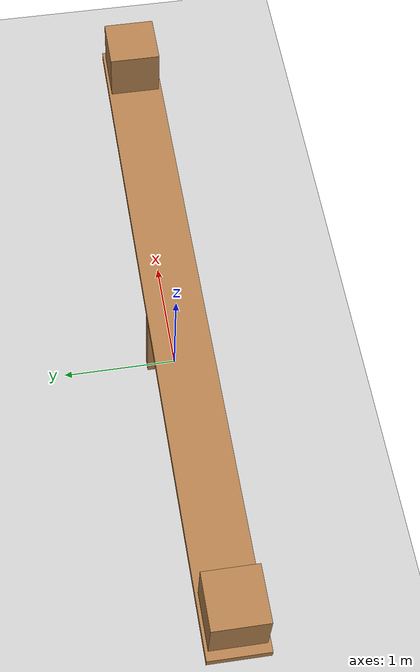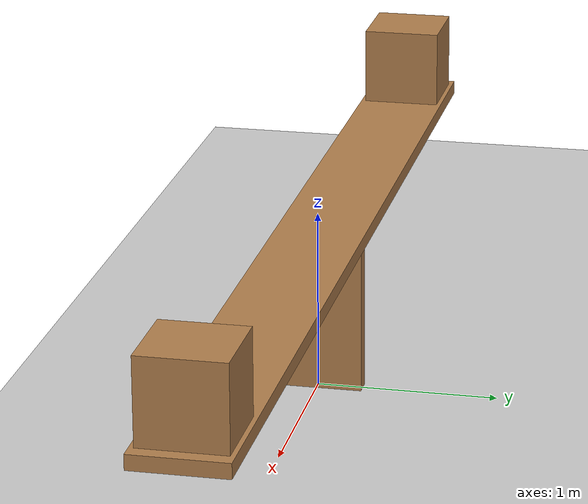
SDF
<?xml version="1.0" ?>

<sdf version='1.5'>
  <world name='default'>
    <physics type='ode'>
      <ode>
        <solver>
          <iters>150</iters>
        </solver>
      </ode>
    </physics>
    <include>
      <uri>model://ground_plane</uri>
    </include>
    <include>
      <uri>model://sun</uri>
    </include>

    <model name='cube1'>
      <pose>2.7 0 1.1050000000000002 0 0 0</pose>
      <allow_auto_disable>0</allow_auto_disable>
      <link name='link'>
        <inertial>
          <mass>45.56250000000001</mass>
          <inertia>
            <ixx>1.5377343750000003</ixx>
            <ixy>0</ixy>
            <ixz>0</ixz>
            <iyy>1.5377343750000003</iyy>
            <iyz>0</iyz>
            <izz>1.5377343750000003</izz>
          </inertia>
        </inertial>
        <collision name='collision'>
          <geometry>
            <box>
              <size>0.45 0.45 0.45</size>
            </box>
          </geometry>
          <surface>
            <contact>
              <ode>
                <max_vel>0.1</max_vel>
                <min_depth>0.01</min_depth>
              </ode>
            </contact>
          </surface>
        </collision>
        <visual name='visual'>
          <geometry>
            <box>
              <size>0.45 0.45 0.45</size>
            </box>
          </geometry>
          <material>
            <script>
              <name>Gazebo/Wood</name>
              <uri>file://media/materials/scripts/gazebo.material</uri>
            </script>
          </material>
        </visual>
      </link>
    </model>

    <model name='cube2'>
      <pose>-2.7 0 1.1050000000000002 0 0 0</pose>
      <allow_auto_disable>0</allow_auto_disable>
      <link name='link'>
        <inertial>
          <mass>45.56250000000001</mass>
          <inertia>
            <ixx>1.5377343750000003</ixx>
            <ixy>0</ixy>
            <ixz>0</ixz>
            <iyy>1.5377343750000003</iyy>
            <iyz>0</iyz>
            <izz>1.5377343750000003</izz>
          </inertia>
        </inertial>
        <collision name='collision'>
          <geometry>
            <box>
              <size>0.45 0.45 0.45</size>
            </box>
          </geometry>
          <surface>
            <contact>
              <ode>
                <max_vel>0.1</max_vel>
                <min_depth>0.01</min_depth>
              </ode>
            </contact>
          </surface>
        </collision>
        <visual name='visual'>
          <geometry>
            <box>
              <size>0.45 0.45 0.45</size>
            </box>
          </geometry>
          <material>
            <script>
              <name>Gazebo/Wood</name>
              <uri>file://media/materials/scripts/gazebo.material</uri>
            </script>
          </material>
        </visual>
      </link>
    </model>

    <model name='fulcrum'>
      <pose>0 0 0.4 0 0 0</pose>
      <allow_auto_disable>0</allow_auto_disable>
      <link name='link'>
        <inertial>
          <mass>20.000000000000004</mass>
          <inertia>
            <ixx>1.4833333333333338</ixx>
            <ixy>0</ixy>
            <ixz>0</ixz>
            <iyy>1.0833333333333337</iyy>
            <iyz>0</iyz>
            <izz>0.4333333333333334</izz>
          </inertia>
        </inertial>
        <collision name='collision'>
          <geometry>
            <box>
              <size>0.1 0.5 0.8</size>
            </box>
          </geometry>
          <surface>
            <contact>
              <ode>
                <max_vel>0.1</max_vel>
                <min_depth>0.01</min_depth>
              </ode>
            </contact>
          </surface>
        </collision>
        <visual name='visual'>
          <geometry>
            <box>
              <size>0.1 0.5 0.8</size>
            </box>
          </geometry>
          <material>
            <script>
              <name>Gazebo/Wood</name>
              <uri>file://media/materials/scripts/gazebo.material</uri>
            </script>
          </material>
        </visual>
      </link>
    </model>

    <model name='plank'>
      <pose>0 0 0.8400000000000001 0 0 0</pose>
      <allow_auto_disable>0</allow_auto_disable>
      <link name='link'>
        <inertial>
          <mass>120.0</mass>
          <inertia>
            <ixx>2.564</ixx>
            <ixy>0</ixy>
            <ixz>0</ixz>
            <iyy>360.06399999999996</iyy>
            <iyz>0</iyz>
            <izz>362.5</izz>
          </inertia>
        </inertial>
        <collision name='collision'>
          <geometry>
            <box>
              <size>6.0 0.5 0.08</size>
            </box>
          </geometry>
          <surface>
            <contact>
              <ode>
                <max_vel>0.1</max_vel>
                <min_depth>0.01</min_depth>
              </ode>
            </contact>
          </surface>
        </collision>
        <visual name='visual'>
          <geometry>
            <box>
              <size>6.0 0.5 0.08</size>
            </box>
          </geometry>
          <material>
            <script>
              <name>Gazebo/Wood</name>
              <uri>file://media/materials/scripts/gazebo.material</uri>
            </script>
          </material>
        </visual>
      </link>
    </model>

    <gui fullscreen='0'>
      <camera name='user_camera'>
        <pose>0 -7 2.41737 0 0.339643 1.5707963267948966</pose>
        <view_controller>orbit</view_controller>
        <projection_type>perspective</projection_type>
      </camera>
    </gui>
  </world>
</sdf>
